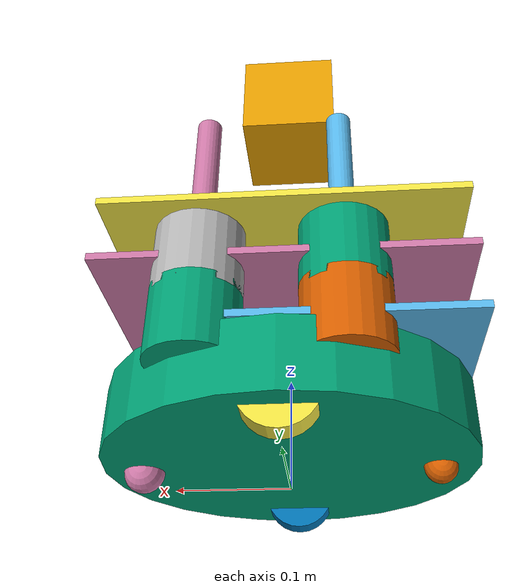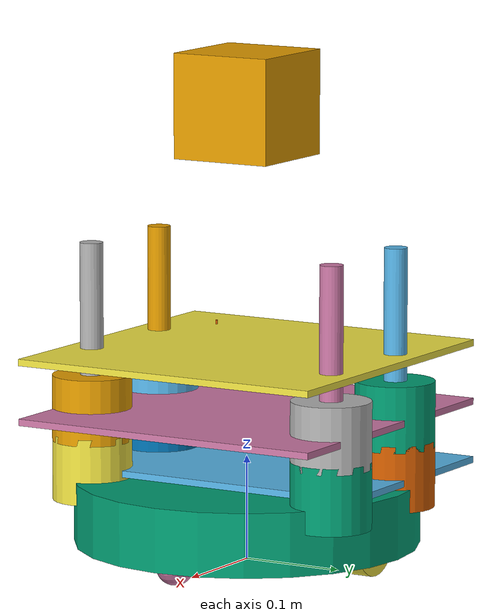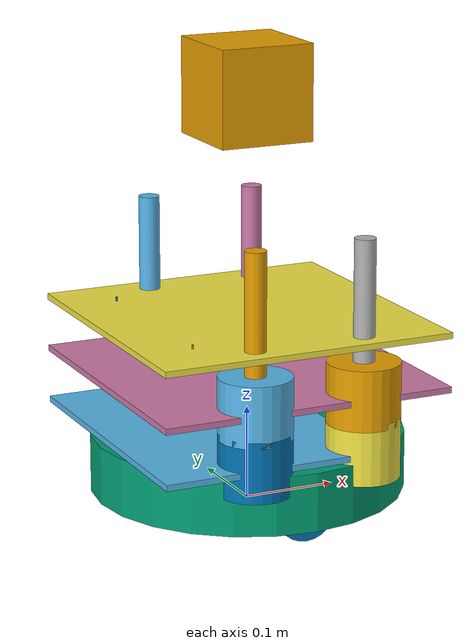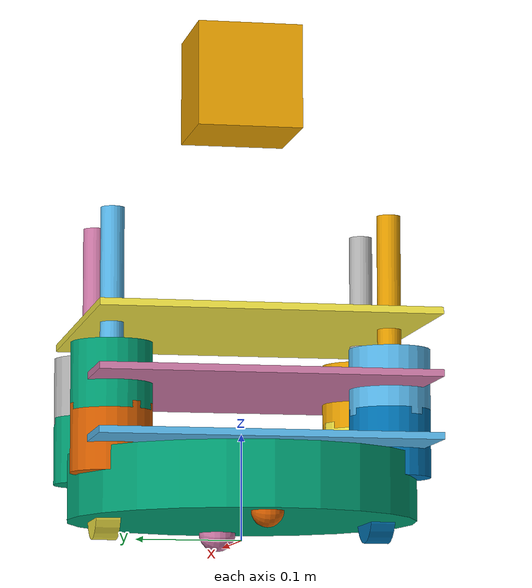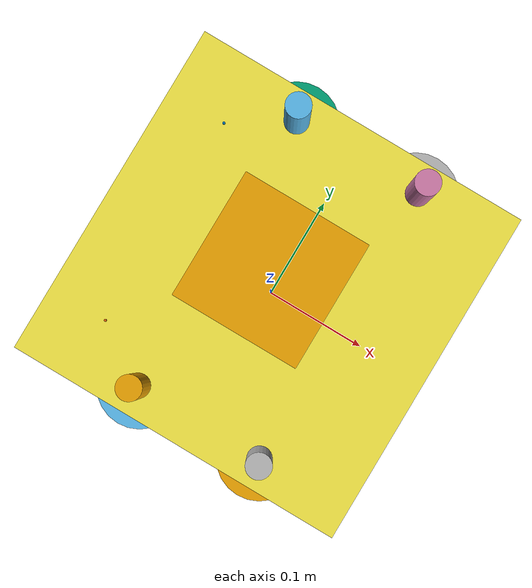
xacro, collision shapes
<?xml version="1.0"?>
<!--
    - Base      : create
    - Stacks    : circles
    - 3d Sensor : sensor_asus_xtion_pro
-->
<robot name="turtlebot" xmlns:xacro="http://ros.org/wiki/xacro">

  <xacro:include filename="$(find turtlebot_description)/urdf/turtlebot_library.urdf.xacro" />

  <create/>
  <stack_circles          parent="base_link"/>
  <sensor_asus_xtion_pro  parent="base_link"/>
</robot>

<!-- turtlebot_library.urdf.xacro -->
<!--
  The complete turtlebot library of xacros for easy reference
 -->
<robot xmlns:xacro="http://ros.org/wiki/xacro">
  <!-- General -->
  <xacro:include filename="$(find turtlebot_description)/urdf/common_properties.urdf.xacro"/>
  <!-- Bases -->
  <xacro:include filename="$(find turtlebot_description)/urdf/bases/create.urdf.xacro"/>
  <xacro:include filename="$(find turtlebot_description)/urdf/bases/kobuki.urdf.xacro" />
  <!-- Stacks -->
  <xacro:include filename="$(find turtlebot_description)/urdf/stacks/circles.urdf.xacro"/>
  <xacro:include filename="$(find turtlebot_description)/urdf/stacks/hexagons.urdf.xacro"/>
  <!-- 3D Sensors -->
  <xacro:include filename="$(find turtlebot_description)/urdf/sensors/kinect.urdf.xacro"/>
  <xacro:include filename="$(find turtlebot_description)/urdf/sensors/asus_xtion_pro.urdf.xacro"/>
  <xacro:include filename="$(find turtlebot_description)/urdf/sensors/asus_xtion_pro_offset.urdf.xacro"/>
  <xacro:include filename="$(find turtlebot_description)/urdf/sensors/realsense_d435.urdf.xacro"/>
</robot>

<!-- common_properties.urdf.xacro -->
<!--
  Various useful properties such as constants and materials
 -->
<robot name="xacro_properties" xmlns:xacro="http://ros.org/wiki/xacro">
<!--
    These properties must be observed by any machine
    that wants to be defined as a turtlebot. Refer
    to the REP for more details.

    http://www.ros.org/reps/rep-0119.html
   -->

	<xacro:property name="cam_px" value="-0.087" />
	<xacro:property name="cam_pz" value="0.2870" />
	<xacro:property name="cam_or" value="0" />
	<xacro:property name="cam_op" value="0" />
	<xacro:property name="cam_oy" value="0" />

  <xacro:property name="M_PI" value="3.1415926535897931" />
  <xacro:property name="material_white">
    <material name="white">
      <color rgba="1 1 1 1"/>
    </material>
  </xacro:property>
  <xacro:property name="material_grey">
    <material name="grey">
      <color rgba="0.5 0.5 0.5 1"/>
    </material>
  </xacro:property>
  <xacro:property name="material_light_grey">
    <material name="light_grey">
      <color rgba="0.6 0.6 0.6 1"/>
    </material>
  </xacro:property>
  <xacro:property name="material_dark_grey">
    <material name="dark_grey">
      <color rgba="0.3 0.3 0.3 1"/>
    </material>
  </xacro:property>
  <xacro:property name="material_black">
    <material name="black">
      <color rgba="0.1 0.1 0.1 1"/>
    </material>
  </xacro:property>
  <xacro:property name="material_red">
    <material name="red">
      <color rgba="1 0 0 1"/>
    </material>
  </xacro:property>
  <xacro:property name="material_green">
    <material name="green">
      <color rgba="0.0 0.8 0.0 1"/>
    </material>
  </xacro:property>
  <xacro:property name="material_blue">
    <material name="blue">
      <color rgba="0.0 0.0 1.0 1"/>
    </material>
  </xacro:property>
  <xacro:property name="material_grey_blue">
    <material name="grey_blue">
      <color rgba="0.4 0.4 1.0 1"/>
    </material>
  </xacro:property>
  <xacro:property name="material_orange">
    <material name="orange">
      <color rgba="1.0 0.7 0.0 1"/>
    </material>
  </xacro:property>
</robot>

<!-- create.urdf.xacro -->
<robot name="turtlebot_hardware" xmlns:xacro="http://ros.org/wiki/xacro">

	<!-- Macro for TurtleBot body. Including Gazebo extensions, but does not include Kinect -->
		<xacro:include filename="$(find turtlebot_description)/urdf/bases/create_gazebo.urdf.xacro"/>

	<xacro:macro name="create">
		<material name="Green">
			<color rgba="0.0 0.8 0.0 1.0"/>
		</material>

		<joint name="laser_joint" type="fixed">
			<origin xyz="0.0 0.0 0.42" rpy="0 0 0"/>
			<parent link="base_link" />
			<child link="laser_sensor_link" />
		</joint>

		<link name="laser_sensor_link">
			<inertial>
				<mass value="1e-5"/>
				<origin xyz="0 0 0" rpy="0 0 0"/>
				<inertia ixx="1e-6" ixy="0" ixz="0" iyy="1e-6" iyz="0" izz="1e-6"/>
			</inertial>
			<collision>
				<origin xyz="0 0 0" rpy="0 0 0"/>
				<geometry>
					<box size="0.1 0.1 0.1"/>
				</geometry>
			</collision>
			<visual>
				<origin xyz="0 0 -0.03" rpy="1.570796 0 -1.570796"/>
				<geometry>
				<mesh filename="package://turtlebot_description/meshes/sensors/rplidar.dae" scale="0.001 0.001 0.001" />
			</geometry>
			</visual>
		</link>

		<!-- base_footprint is a fictitious link(frame) that is on the ground right below base_link origin, navigation stack depends on this frame -->
		<link name="base_footprint">
			<visual>
			<origin xyz="0 0 0" rpy="0 0 0" />
			<geometry>
				<box size="0.001 0.001 0.001" />
			</geometry>
			<material name="Green" />
			</visual>

			<collision>
			<origin xyz="0 0 0.017" rpy="0 0 0" />
			<geometry>
			<box size="0.001 0.001 0.001" />
			</geometry>
			</collision>
		</link>

		<link name="base_link">
			<inertial>
			<mass value="2" />
			<origin xyz="0 0 0.0" />
			<inertia ixx="0.01" ixy="0.0" ixz="0.0"
				iyy="0.01" iyz="0.0" izz="0.5" />
			</inertial>

			<visual>
			<origin xyz=" 0 0 0.0308" rpy="0 0 0" />
			<geometry>
				<mesh filename="package://turtlebot_description/meshes/create_body.dae"/>
			</geometry>
			</visual>

			<collision>
			<origin xyz="0.0 0.0 0.0308" rpy="0 0 0" />
			<geometry>
				<cylinder length="0.0611632" radius="0.16495"/>
			</geometry>
			</collision>
		</link>

		<link name="left_wheel_link">
			<inertial>
			<origin xyz="0 0 0"/>
			<mass value="0.01" />
			<inertia ixx="0.001" ixy="0.0" ixz="0.0"
				iyy="0.001" iyz="0.0" izz="0.001" />
			</inertial>

			<visual>
			<origin xyz="0 0 0" rpy="0 1.5707 1.5707" />
			<geometry>
				<cylinder radius="0.033" length = "0.023"/>
			</geometry>
			</visual>

			<collision>
			<origin xyz="0 0 0" rpy="0 1.5707 1.5707" />
			<geometry>
				<cylinder radius="0.033" length = "0.023"/>
			</geometry>
			</collision>
		</link>

		<joint name="left_wheel_joint" type="continuous">
			<origin xyz="0 0.13 0.015" rpy="0 0 0"/>
			<parent link="base_link"/>
			<child link="left_wheel_link"/>
			<axis xyz="0 1 0"/>
		</joint>

		<link name="right_wheel_link">
			<inertial>
			<origin xyz="0 0 0"/>
			<mass value="0.01" />
			<inertia ixx="0.001" ixy="0.0" ixz="0.0"
				iyy="0.001" iyz="0.0" izz="0.001" />
			</inertial>

			<visual>
			<origin xyz="0 0 0" rpy="0 1.5707 1.5707" />
			<geometry>
				<cylinder radius="0.033" length = "0.023"/>
			</geometry>
			</visual>

			<collision>
			<origin xyz="0 0 0" rpy="0 1.5707 1.5707" />
			<geometry>
				<cylinder radius="0.033" length = "0.023"/>
			</geometry>
			</collision>
		</link>

		<joint name="right_wheel_joint" type="continuous">
			<origin xyz="0 -0.13 0.015" rpy="0 0 0"/>
			<parent link="base_link"/>
			<child link="right_wheel_link"/>
			<axis xyz="0 1 0"/>
		</joint>

		<link name="rear_wheel_link">
			<inertial>
				<origin xyz="0 0 0"/>
				<mass value="0.001" />
				<inertia ixx="0.0001" ixy="0.0" ixz="0.0"
					iyy="0.0001" iyz="0.0" izz="0.0001" />
			</inertial>

			<visual>
				<origin xyz="0 0 0" rpy="0 1.5707 1.5707"/>
				<geometry>
					<sphere radius="0.015" />
				</geometry>
			</visual>

			<collision>
				<origin xyz="0 0 0" rpy="0 1.5707 1.5707" />
				<geometry>
					<sphere radius="0.015" />
				</geometry>
			</collision>
		</link>
		<!-- fixed because there's no transmission -->
		<joint name="rear_castor_joint" type="fixed">
			<origin xyz="-0.13 0 0.0" rpy="0 0 0"/>
			<parent link="base_link"/>
			<child link="rear_wheel_link"/>
			<axis xyz="0 1 0"/>
		</joint>

		<link name="front_wheel_link">
			<inertial>
				<origin xyz="0 0 0" />
				<mass value="0.01" />
				<inertia ixx="0.001" ixy="0.0" ixz="0.0"
					iyy="0.001" iyz="0.0" izz="0.001" />
			</inertial>

			<visual>
				<origin xyz="0 0 0" rpy="0 1.5707 1.5707"/>
				<geometry>
					<sphere radius="0.018" />
				</geometry>
			</visual>

			<collision>
				<origin xyz="0 0 0" rpy="0 1.5707 1.5707" />
				<geometry>
					<sphere radius="0.018" />
				</geometry>
			</collision>
		</link>

		<!-- fixed because there's no transmission -->
		<joint name="front_castor_joint" type="fixed">
			<origin xyz="0.13 0 0.0" rpy="0 0 0"/>
			<parent link="base_link"/>
			<child link="front_wheel_link"/>
			<axis xyz="0 1 0"/>
		</joint>

		<link name="wall_sensor_link">
			<inertial>
			<mass value="0.01" />
			<origin xyz="0 0 0"/>
			<inertia ixx="0.001" ixy="0.0" ixz="0.0"
				iyy="0.001" iyz="0.0" izz="0.001" />
			</inertial>
		</link>

		<link name="left_cliff_sensor_link">
			<inertial>
			<mass value="0.01" />
			<origin xyz="0 0 0"/>
			<inertia ixx="0.001" ixy="0.0" ixz="0.0"
				iyy="0.001" iyz="0.0" izz="0.001" />
			</inertial>
		</link>

		<link name="right_cliff_sensor_link">
			<inertial>
			<mass value="0.01" />
			<origin xyz="0 0 0"/>
			<inertia ixx="0.001" ixy="0.0" ixz="0.0"
				iyy="0.001" iyz="0.0" izz="0.001" />
			</inertial>
		</link>

		<link name="leftfront_cliff_sensor_link">
			<inertial>
			<mass value="0.01" />
			<origin xyz="0 0 0"/>
			<inertia ixx="1.0" ixy="0.0" ixz="0.0"
				iyy="0.01" iyz="0.0" izz="0.01" />
			</inertial>
		</link>

		<link name="rightfront_cliff_sensor_link">
			<inertial>
			<mass value="0.01" />
			<origin xyz="0 0 0"/>
			<inertia ixx="0.001" ixy="0.0" ixz="0.0"
				iyy="0.001" iyz="0.0" izz="0.001" />
			</inertial>
		</link>

		<joint name="base_footprint_joint" type="fixed">
			<origin xyz="0 0 0.017" rpy="0 0 0" />
			<parent link="base_footprint"/>
			<child link="base_link" />
		</joint>

		<joint name="base_wall_sensor_joint" type="fixed">
			<origin xyz="0.09 -0.120 0.042" rpy="0 0 -1.0" />
			<parent link="base_link"/>
			<child link="wall_sensor_link" />
		</joint>

		<joint name="base_left_cliff_sensor_joint" type="fixed">
			<origin xyz="0.07 0.14 0.01" rpy="0 1.57079 0" />
			<parent link="base_link"/>
			<child link="left_cliff_sensor_link" />
		</joint>

		<joint name="base_right_cliff_sensor_joint" type="fixed">
			<origin xyz="0.07 -0.14 0.01" rpy="0 1.57079 0" />
			<parent link="base_link"/>
			<child link="right_cliff_sensor_link" />
		</joint>

		<joint name="base_leftfront_cliff_sensor_joint" type="fixed">
			<origin xyz="0.15 0.04 0.01" rpy="0 1.57079 0" />
			<parent link="base_link"/>
			<child link="leftfront_cliff_sensor_link" />
		</joint>

		<joint name="base_rightfront_cliff_sensor_joint" type="fixed">
			<origin xyz="0.15 -0.04 0.01" rpy="0 1.57079 0" />
			<parent link="base_link"/>
			<child link="rightfront_cliff_sensor_link" />
		</joint>

		<joint name="gyro_joint" type="fixed">
			<axis xyz="0 1 0" />
			<origin xyz="0 0 0.04" rpy="0 0 0" />
			<parent link="base_link"/>
			<child link="gyro_link"/>
		</joint>
		<link name="gyro_link">
			<inertial>
			<mass value="0.001" />
			<origin xyz="0 0 0" rpy="0 0 0" />
			<inertia ixx="0.0001" ixy="0" ixz="0" iyy="0.000001" iyz="0" izz="0.0001" />
			</inertial>
		</link>

	  <!-- Simulation sensors -->
		<sim_create/>
		<sim_create_wall_sensor/>
		<sim_create_cliff_sensors/>
		<sim_imu/>
  	</xacro:macro>
</robot>

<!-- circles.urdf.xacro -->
<robot name="turtlebot_hardware" xmlns:xacro="http://ros.org/wiki/xacro">

  <xacro:macro name="turtlebot_spacer" params="parent number x_loc y_loc z_loc">
    <joint name="spacer_${number}_joint" type="fixed">
      <origin xyz="${x_loc} ${y_loc} ${z_loc}" rpy="0 0 0" />
      <parent link="${parent}"/>
      <child link="spacer_${number}_link" />
    </joint>

    <link name="spacer_${number}_link">
      <inertial>
        <mass value="0.001" />
        <origin xyz="0 0 0" />
        <inertia ixx="0.0001" ixy="0.0" ixz="0.0"
          iyy="0.0001" iyz="0.0"
          izz="0.0001" />
      </inertial>

      <visual>
        <origin xyz=" 0 0 0 " rpy="0 0 0" />
        <geometry>
          <mesh filename="package://turtlebot_description/meshes/stacks/circles/68-02403-125_Spacer.dae"/>
        </geometry>
      </visual>

      <collision>
        <origin xyz="0.0 0.0 0.0" rpy="0 0 0" />
        <geometry>
          <cylinder length="0.003175" radius=".0127"/>
        </geometry>
      </collision>
    </link>
  </xacro:macro>

  <xacro:macro name="turtlebot_standoff_1in" params="parent number x_loc y_loc z_loc">
    <joint name="standoff_1in_${number}_joint" type="fixed">
      <origin xyz="${x_loc} ${y_loc} ${z_loc}" rpy="0 0 0" />
      <parent link="${parent}"/>
      <child link="standoff_1in_${number}_link" />
    </joint>

    <link name="standoff_1in_${number}_link">
      <inertial>
        <mass value="0.001" />
        <origin xyz="0 0 0" />
        <inertia ixx="0.0001" ixy="0.0" ixz="0.0"
          iyy="0.0001" iyz="0.0"
          izz="0.0001" />
      </inertial>

      <visual>
        <origin xyz=" 0 0 0 " rpy="0 0 0" />
        <geometry>
          <mesh filename="package://turtlebot_description/meshes/stacks/circles/68-04552-1000-RA_Turtlebot_M-F_Standoff.dae"/>
        </geometry>
      </visual>

      <collision>
        <origin xyz="0.0 0.0 0.0" rpy="0 0 0" />
        <geometry>
          <cylinder length="0.0381" radius="0.011113"/>
        </geometry>
      </collision>
    </link>
  </xacro:macro>

  <xacro:macro name="turtlebot_standoff_2in" params="parent number x_loc y_loc z_loc">
    <joint name="standoff_2in_${number}_joint" type="fixed">
      <origin xyz="${x_loc} ${y_loc} ${z_loc}" rpy="0 0 0" />
      <parent link="${parent}"/>
      <child link="standoff_2in_${number}_link" />
    </joint>

    <link name="standoff_2in_${number}_link">
      <inertial>
        <mass value="0.001" />
        <origin xyz="0 0 0" />
        <inertia ixx="0.0001" ixy="0.0" ixz="0.0"
          iyy="0.0001" iyz="0.0"
          izz="0.0001" />
      </inertial>

      <visual>
        <origin xyz=" 0 0 0 " rpy="0 0 0" />
        <geometry>
          <mesh filename="package://turtlebot_description/meshes/stacks/circles/68-04552-2000-RA_Turtlebot_M-F_Standoff.dae"/>
        </geometry>
      </visual>

      <collision>
        <origin xyz="0.0 0.0 0.0" rpy="0 0 0" />
        <geometry>
          <cylinder length="0.0635" radius="0.0381"/>
        </geometry>
      </collision>
    </link>
  </xacro:macro>

  <xacro:macro name="turtlebot_standoff_8in" params="parent number x_loc y_loc z_loc">
    <joint name="standoff_8in_${number}_joint" type="fixed">
      <origin xyz="${x_loc} ${y_loc} ${z_loc}" rpy="0 0 0" />
      <parent link="${parent}"/>
      <child link="standoff_8in_${number}_link" />
    </joint>

    <link name="standoff_8in_${number}_link">
      <inertial>
        <mass value="0.001" />
        <origin xyz="0 0 0" />
        <inertia ixx="0.0001" ixy="0.0" ixz="0.0"
          iyy="0.0001" iyz="0.0"
          izz="0.0001" />
      </inertial>

      <visual>
        <origin xyz=" 0 0 0 " rpy="0 0 0" />
        <geometry>
          <mesh filename="package://turtlebot_description/meshes/stacks/circles/68-02421-8000-RA_Turtlebot_F-F_Standoff.dae"/>
        </geometry>
      </visual>

      <collision>
        <origin xyz="0.0 0.0 0.0" rpy="0 0 0" />
        <geometry>
          <cylinder length="0.2032" radius="0.011113"/>
        </geometry>
      </collision>
    </link>
  </xacro:macro>

  <xacro:macro name="turtlebot_standoff_kinect" params="parent number x_loc y_loc z_loc">
    <joint name="standoff_kinect_${number}_joint" type="fixed">
      <origin xyz="${x_loc} ${y_loc} ${z_loc}" rpy="0 0 0" />
      <parent link="${parent}"/>
      <child link="standoff_kinect_${number}_link" />
    </joint>

    <link name="standoff_kinect_${number}_link">
      <inertial>
        <mass value="0.001" />
        <origin xyz="0 0 0" />
        <inertia ixx="0.0001" ixy="0.0" ixz="0.0"
          iyy="0.0001" iyz="0.0"
          izz="0.0001" />
      </inertial>

      <visual>
        <origin xyz=" 0 0 0 " rpy="0 0 0" />
        <geometry>
          <mesh filename="package://turtlebot_description/meshes/stacks/circles/68-04556-RA_Kinect_Standoff_Assy.dae"/>
        </geometry>
      </visual>

      <collision>
        <origin xyz="0.0 0.0 0.0" rpy="0 0 0" />
        <geometry>
          <cylinder length="0.008585" radius="0.001111"/>
        </geometry>
      </collision>
    </link>
  </xacro:macro>

  <xacro:macro name="stack_circles" params="parent">
    <turtlebot_spacer parent="${parent}" number="0" x_loc="-0.00254" y_loc="0.1114679" z_loc="0.062992"/>
    <turtlebot_spacer parent="${parent}" number="1" x_loc="-0.00254" y_loc="-0.1114679" z_loc="0.062992"/>
    <turtlebot_spacer parent="${parent}" number="2" x_loc="-0.07239" y_loc="-0.1114679" z_loc="0.062992"/>
    <turtlebot_spacer parent="${parent}" number="3" x_loc="-0.07239" y_loc="0.1114679" z_loc="0.062992"/>

    <joint name="plate_0_joint" type="fixed">
      <origin xyz="-0.04334 0  0.06775704" rpy="0 0 0" />
      <parent link="${parent}"/>
      <child link="plate_0_link" />
    </joint>

    <link name="plate_0_link">
      <inertial>
        <mass value="0.01" />
        <origin xyz="0 0 0" />
        <inertia ixx="0.01" ixy="0.0" ixz="0.0"
          iyy="0.01" iyz="0.0"
          izz="0.01" />
      </inertial>

      <visual>
        <origin xyz=" 0 0 0 " rpy="0 0 0" />
        <geometry>
          <mesh filename="package://turtlebot_description/meshes/stacks/circles/plate_0_logo.dae"/>
        </geometry>
      </visual>

      <collision>
        <origin xyz="0.0 0.0 0.0" rpy="0 0 0" />
        <geometry>
          <box size="0.233502 0.314845 0.006401"/>
        </geometry>
      </collision>
    </link>

    <turtlebot_standoff_2in parent="${parent}" number="0" x_loc="0.0676402" y_loc="0.1314196" z_loc="0.0709803"/>
    <turtlebot_standoff_2in parent="${parent}" number="1" x_loc="0.0676402" y_loc="-0.1314196" z_loc="0.0709803"/>
    <turtlebot_standoff_2in parent="${parent}" number="2" x_loc="-0.052832" y_loc="-0.1314196" z_loc="0.0709803"/>
    <turtlebot_standoff_2in parent="${parent}" number="3" x_loc="-0.052832" y_loc="0.1314196" z_loc="0.0709803"/>

    <joint name="plate_1_joint" type="fixed">
      <origin xyz="0.04068 0 0.05715" rpy="0 0 0" />
      <parent link="plate_0_link"/>
      <child link="plate_1_link" />
    </joint>

    <link name="plate_1_link">
      <inertial>
        <mass value="0.1" />
        <origin xyz="0 0 0" />
        <inertia ixx="0.01" ixy="0.0" ixz="0.0"
          iyy="0.01" iyz="0.0"
          izz="0.01" />
      </inertial>

      <visual>
        <origin xyz=" 0 0 0 " rpy="0 0 0" />
        <geometry>
          <mesh filename="package://turtlebot_description/meshes/stacks/circles/plate_1_logo.dae"/>
        </geometry>
      </visual>

      <collision>
        <origin xyz="0.0 0.0 0.0" rpy="0 0 0" />
        <geometry>
          <box size="0.314856 0.314856 0.006401"/>
        </geometry>
      </collision>
    </link>

    <turtlebot_standoff_2in parent="standoff_2in_0_link" number="4" x_loc="0" y_loc="0" z_loc="0.05715"/>
    <turtlebot_standoff_2in parent="standoff_2in_1_link" number="5" x_loc="0" y_loc="0" z_loc="0.05715"/>
    <turtlebot_standoff_2in parent="standoff_2in_2_link" number="6" x_loc="0" y_loc="0" z_loc="0.05715"/>
    <turtlebot_standoff_2in parent="standoff_2in_3_link" number="7" x_loc="0" y_loc="0" z_loc="0.05715"/>

    <joint name="plate_2_joint" type="fixed">
      <origin xyz="0 0 0.0572008" rpy="0 0 0" />
      <parent link="plate_1_link"/>
      <child link="plate_2_link" />
    </joint>
    <link name="plate_2_link">
      <inertial>
        <mass value="0.01" />
        <origin xyz="0 0 0" />
        <inertia ixx="0.001" ixy="0.0" ixz="0.0"
          iyy="0.001" iyz="0.0"
          izz="0.001" />
      </inertial>

      <visual>
        <origin xyz=" 0 0 0 " rpy="0 0 0" />
        <geometry>
          <mesh filename="package://turtlebot_description/meshes/stacks/circles/plate_1_logo.dae"/>
        </geometry>
      </visual>

      <collision>
        <origin xyz="0.0 0.0 0.0" rpy="0 0 0" />
        <geometry>
          <box size="0.314856 0.314856 0.006401"/>
        </geometry>
      </collision>
    </link>

    <turtlebot_standoff_kinect parent="plate_2_link" number="0" x_loc="-0.1024382" y_loc="0.098" z_loc="0.0032004"/>
    <turtlebot_standoff_kinect parent="plate_2_link" number="1" x_loc="-0.1024382" y_loc="-0.098" z_loc="0.0032004"/>

    <turtlebot_standoff_8in parent="standoff_2in_4_link" number="0" x_loc="0" y_loc="0" z_loc="0.05715"/>
    <turtlebot_standoff_8in parent="standoff_2in_5_link" number="1" x_loc="0" y_loc="0" z_loc="0.05715"/>
    <turtlebot_standoff_8in parent="standoff_2in_6_link" number="2" x_loc="0" y_loc="0" z_loc="0.05715"/>
    <turtlebot_standoff_8in parent="standoff_2in_7_link" number="3" x_loc="0" y_loc="0" z_loc="0.05715"/>

    <joint name="plate_3_joint" type="fixed">
      <origin xyz="-0.01316 0 0.2063496" rpy="0 0 0" />
      <parent link="plate_2_link"/>
      <child link="plate_3_link" />
    </joint>

    <link name="plate_3_link">
      <inertial>
        <mass value="0.01" />
        <origin xyz="0 0 0" />
        <inertia ixx="0.0001" ixy="0.0" ixz="0.0"
          iyy="0.0001" iyz="0.0"
          izz="0.0001" />
      </inertial>

      <visual>
        <origin xyz=" 0 0 0 " rpy="0 0 0" />
        <geometry>
          <mesh filename="package://turtlebot_description/meshes/stacks/circles/plate_2_logo.dae"/>
        </geometry>
      </visual>

      <collision>
        <origin xyz="0.0 0.0 0.0" rpy="0 0 0" />
        <geometry>
          <box size="0.01 0.01 0.01" />
        </geometry>
      </collision>
    </link>
  </xacro:macro>
</robot>

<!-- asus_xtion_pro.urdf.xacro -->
<robot name="sensor_asus_xtion_pro" xmlns:xacro="http://ros.org/wiki/xacro">
  <xacro:include filename="$(find turtlebot_description)/urdf/sensors/camera_gazebo.urdf.xacro"/>
  <xacro:include filename="$(find turtlebot_description)/urdf/sensors/laser_gazebo.urdf.xacro"/>

  <!-- Xacro properties -->
  <xacro:property name="M_SCALE" value="0.001"/>
  <xacro:property name="asus_xtion_pro_cam_py" value="0.0205"/>
  <xacro:property name="asus_xtion_pro_depth_rel_rgb_py" value="0.0270" />
  <xacro:property name="asus_xtion_pro_cam_rel_rgb_py"   value="-0.0220" />

  <!-- Parameterised in part by the values in turtlebot_properties.urdf.xacro -->
  <xacro:macro name="sensor_asus_xtion_pro" params="parent">
    <joint name="camera_rgb_joint" type="fixed">
      <origin xyz="${cam_px} ${asus_xtion_pro_cam_py} ${cam_pz}"
              rpy="${cam_or} ${cam_op} ${cam_oy}"/>
      <parent link="${parent}"/>
      <child link="camera_rgb_frame" />
    </joint>

    <link name="camera_rgb_frame"/>

    <joint name="camera_rgb_optical_joint" type="fixed">
      <origin xyz="0 0 0" rpy="${-M_PI/2} 0 ${-M_PI/2}" />
      <parent link="camera_rgb_frame" />
      <child link="camera_rgb_optical_frame" />
    </joint>

    <link name="camera_rgb_optical_frame"/>

    <joint name="camera_joint" type="fixed">
      <origin xyz="0 ${asus_xtion_pro_cam_rel_rgb_py} 0"
              rpy="0 0 0"/>
      <parent link="camera_rgb_frame"/>
      <child link="camera_link"/>
    </joint>

    <link name="camera_link">
      <visual>
        <origin xyz="-0.015 0.0035 0.004" rpy="0 0 0"/>
        <geometry>
          <mesh filename="package://turtlebot_description/meshes/sensors/xtion_pro_camera.dae"/>
        </geometry>
      </visual>
      <collision>
        <origin xyz="0.0 0.0 0.0" rpy="0 0 0" />
        <geometry>
        <box size="0.0 0.0 0.0"/>
      </geometry>
      </collision>
      <inertial>
        <mass value="0.170" />
        <origin xyz="0 0 0" />
        <inertia ixx="0.001152600" ixy="0.0" ixz="0.0"
                 iyy="0.000148934" iyz="0.0"
                 izz="0.001154654" />
      </inertial>
    </link>

    <joint name="camera_depth_joint" type="fixed">
      <origin xyz="0 ${asus_xtion_pro_depth_rel_rgb_py} 0" rpy="0 0 0" />
      <parent link="camera_rgb_frame" />
      <child link="camera_depth_frame" />
    </joint>
    <link name="camera_depth_frame"/>

    <joint name="camera_depth_optical_joint" type="fixed">
      <origin xyz="0 0 0" rpy="${-M_PI/2} 0 ${-M_PI/2}" />
      <parent link="camera_depth_frame" />
      <child link="camera_depth_optical_frame" />
    </joint>
    <link name="camera_depth_optical_frame"/>

    <!-- RGBD sensor for simulation, same as Kinect -->
    <turtlebot_sim_3dsensor/>
    <turtlebot_sim_laser/>

    <!-- Asus mount -->
    <joint name="mount_asus_xtion_pro_joint" type="fixed">
      <origin xyz="-0.1024 0.0 0.272" rpy="0 0 0"/>
      <parent link="${parent}"/>
      <child link="mount_asus_xtion_pro_link"/>
    </joint>
    <link name="mount_asus_xtion_pro_link">
      <visual>
        <origin xyz="0 0 0" rpy="${-M_PI/2} 0 0"/>
        <geometry>
          <mesh filename="package://turtlebot_description/meshes/sensors/xtion_pro_stack.dae"/>
        </geometry>
      </visual>
      <collision>
        <origin xyz="0.0 0.0 0.0" rpy="0 0 0" />
        <geometry>
        <box size="0.0 0.0 0.0"/>
      </geometry>
      </collision>
      <inertial>
        <mass value="0.170" />
        <origin xyz="0 0 0" />
        <inertia ixx="0.001152600" ixy="0.0" ixz="0.0"
                 iyy="0.000148934" iyz="0.0"
                 izz="0.001154654" />
      </inertial>
    </link>
  </xacro:macro>
</robot>
